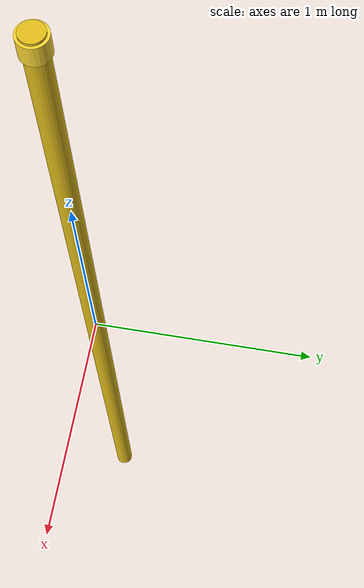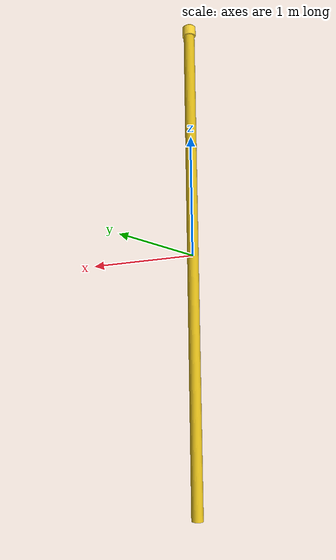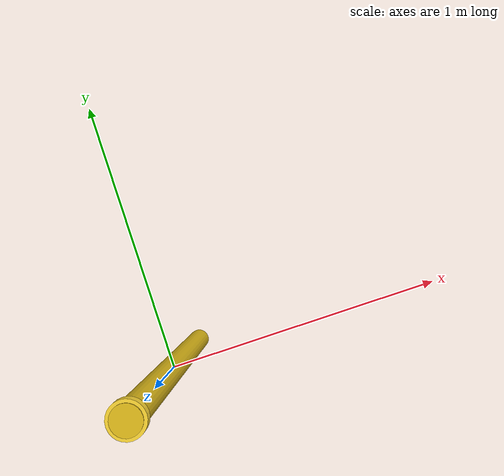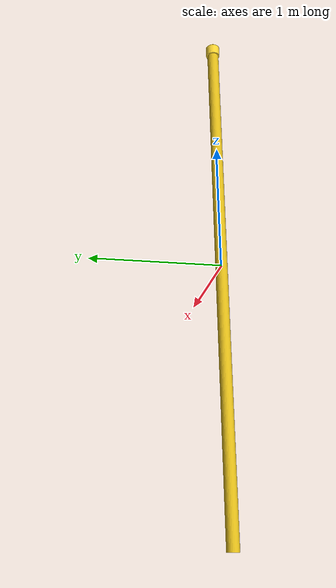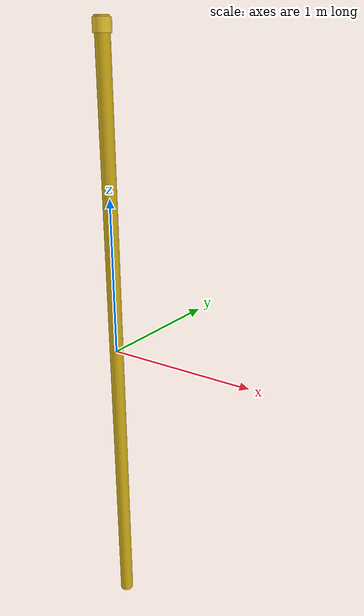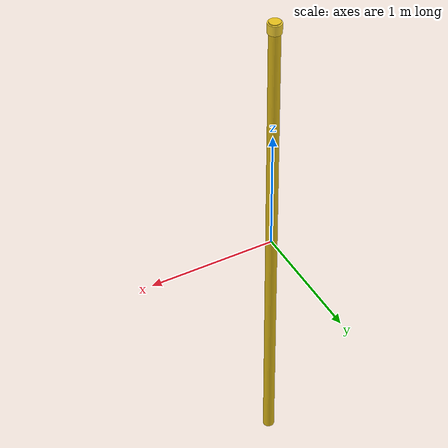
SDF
<?xml version="1.0"?>
<sdf version="1.10">
  <model name="wire_4p0m_yellow">
    <static>true</static>
    <link name="link">
      <visual name="wire">
        <geometry>
          <cylinder>
            <radius>0.045</radius>
            <length>4.0</length>
          </cylinder>
        </geometry>
        <material>
          <ambient>0.720 0.600 0.080 1</ambient>
          <diffuse>0.900 0.750 0.100 1</diffuse>
          <specular>0.4 0.4 0.4 1</specular>
        </material>
      </visual>
      <visual name="marker">
        <pose>0 0 1.950 0 0 0</pose>
        <geometry>
          <cylinder>
            <radius>0.055</radius>
            <length>0.08</length>
          </cylinder>
        </geometry>
        <material>
          <ambient>0.900 0.750 0.100 1</ambient>
          <diffuse>1.000 0.850 0.200 1</diffuse>
        </material>
      </visual>
    </link>
  </model>
</sdf>
